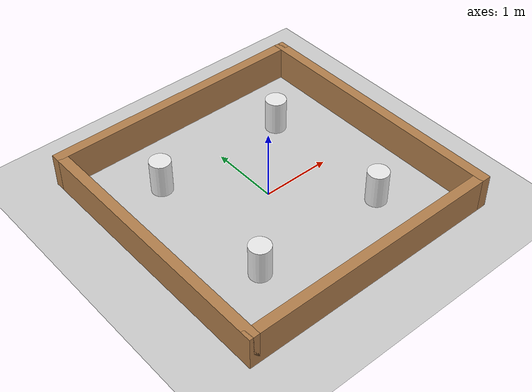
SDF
<sdf version='1.4'>
  <world name='default'>
    <!-- A global light source -->
    <include>
      <uri>model://sun</uri>
    </include>

    <!-- A ground plane -->
    <include>
      <uri>model://ground_plane</uri>
    </include>

    <physics type="ode">
      <real_time_update_rate>1000.0</real_time_update_rate>
      <max_step_size>0.003</max_step_size>
      <real_time_factor>3</real_time_factor>
      <ode>
        <solver>
          <type>quick</type>
          <iters>150</iters>
          <precon_iters>0</precon_iters>
          <sor>1.400000</sor>
          <use_dynamic_moi_rescaling>1</use_dynamic_moi_rescaling>
        </solver>
        <constraints>
          <cfm>0.00001</cfm>
          <erp>0.2</erp>
          <contact_max_correcting_vel>2000.000000</contact_max_correcting_vel>
          <contact_surface_layer>0.01000</contact_surface_layer>
        </constraints>
      </ode>
    </physics>

    <!-- Load model -->
    <include>
      <uri>model://turtlebot3_square</uri>
    </include>

    <model name="turtlebot3_dqn_obstacles">
      <plugin name="obstacles" filename="libobstacles.so"/>
      <allow_auto_disable>1</allow_auto_disable>
      <include>
        <uri>model://turtlebot3_dqn_world/obstacles</uri>
      </include>
    </model>

    <scene>
      <ambient>0.4 0.4 0.4 1</ambient>
      <background>0.7 0.7 0.7 1</background>
      <shadows>false</shadows>
    </scene>

    <gui fullscreen='0'>
      <camera name='user_camera'>
        <projection_type>orthographic</projection_type>
        <pose>0.8 0.0 12.0 0 1.5708 0</pose>
        <view_controller>orbit</view_controller>
      </camera>
    </gui>
  </world>
</sdf>

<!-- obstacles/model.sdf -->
<sdf version='1.8'>
  <model name='obstacles'>
    <pose>0 0 0 0 0 0</pose>
    <static>false</static>

    <link name='obstacle_1'>
      <pose>-1.0 -1.0 0.25 0 0 0</pose>
      <collision name='obstacle_1_collision'>
        <geometry>
          <cylinder>
            <radius>0.15</radius>
            <length>0.5</length>
          </cylinder>
        </geometry>
      </collision>
      <visual name='obstacle_1_visual'>
        <geometry>
          <cylinder>
            <radius>0.15</radius>
            <length>0.5</length>
          </cylinder>
        </geometry>
        <material>
          <script>
            <uri>file://media/materials/scripts/gazebo.material</uri>
            <name>Gazebo/White</name>
          </script>
        </material>
      </visual>
    </link>
    <link name='obstacle_2'>
      <pose>-1.0 1.0 0.25 0 0 0</pose>
      <collision name='obstacle_2_collision'>
        <geometry>
          <cylinder>
            <radius>0.15</radius>
            <length>0.5</length>
          </cylinder>
        </geometry>
      </collision>
      <visual name='obstacle_2_visual'>
        <geometry>
          <cylinder>
            <radius>0.15</radius>
            <length>0.5</length>
          </cylinder>
        </geometry>
        <material>
          <script>
            <uri>file://media/materials/scripts/gazebo.material</uri>
            <name>Gazebo/White</name>
          </script>
        </material>
      </visual>
    </link>
    <link name='obstacle_3'>
      <pose>1.0 -1.0 0.25 0 0 0</pose>
      <collision name='obstacle_3_collision'>
        <geometry>
          <cylinder>
            <radius>0.15</radius>
            <length>0.5</length>
          </cylinder>
        </geometry>
      </collision>
      <visual name='obstacle_3_visual'>
        <geometry>
          <cylinder>
            <radius>0.15</radius>
            <length>0.5</length>
          </cylinder>
        </geometry>
        <material>
          <script>
            <uri>file://media/materials/scripts/gazebo.material</uri>
            <name>Gazebo/White</name>
          </script>
        </material>
      </visual>
    </link>
    <link name='obstacle_4'>
      <pose>1.0 1.0 0.25 0 0 0</pose>
      <collision name='obstacle_4_collision'>
        <geometry>
          <cylinder>
            <radius>0.15</radius>
            <length>0.5</length>
          </cylinder>
        </geometry>
      </collision>
      <visual name='obstacle_4_visual'>
        <geometry>
          <cylinder>
            <radius>0.15</radius>
            <length>0.5</length>
          </cylinder>
        </geometry>
        <material>
          <script>
            <uri>file://media/materials/scripts/gazebo.material</uri>
            <name>Gazebo/White</name>
          </script>
        </material>
      </visual>
    </link>
  </model>
</sdf>

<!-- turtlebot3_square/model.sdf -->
<sdf version='1.6'>
  <model name='turtlebot3_square'>
    <pose frame=''>0 0 0 0 -0 0</pose>
    <link name='Wall_0'>
      <collision name='Wall_0_Collision'>
        <geometry>
          <box>
            <size>4 0.15 0.5</size>
          </box>
        </geometry>
        <pose frame=''>0 0 0.25 0 -0 0</pose>
      </collision>
      <visual name='Wall_0_Visual'>
        <pose frame=''>0 0 0.25 0 -0 0</pose>
        <geometry>
          <box>
            <size>4 0.15 0.5</size>
          </box>
        </geometry>
        <material>
          <script>
            <uri>file://media/materials/scripts/gazebo.material</uri>
            <name>Gazebo/Wood</name>
          </script>
          <ambient>1 1 1 1</ambient>
        </material>
      </visual>
      <pose frame=''>0 1.925 0 0 -0 0</pose>
    </link>
    <link name='Wall_2'>
      <collision name='Wall_2_Collision'>
        <geometry>
          <box>
            <size>4 0.15 0.5</size>
          </box>
        </geometry>
        <pose frame=''>0 0 0.25 0 -0 0</pose>
      </collision>
      <visual name='Wall_2_Visual'>
        <pose frame=''>0 0 0.25 0 -0 0</pose>
        <geometry>
          <box>
            <size>4 0.15 0.5</size>
          </box>
        </geometry>
        <material>
          <script>
            <uri>file://media/materials/scripts/gazebo.material</uri>
            <name>Gazebo/Wood</name>
          </script>
          <ambient>1 1 1 1</ambient>
        </material>
      </visual>
      <pose frame=''>-1.925 0 0 0 0 -1.5708</pose>
    </link>
    <link name='Wall_3'>
      <collision name='Wall_3_Collision'>
        <geometry>
          <box>
            <size>4 0.15 0.5</size>
          </box>
        </geometry>
        <pose frame=''>0 0 0.25 0 -0 0</pose>
      </collision>
      <visual name='Wall_3_Visual'>
        <pose frame=''>0 0 0.25 0 -0 0</pose>
        <geometry>
          <box>
            <size>4 0.15 0.5</size>
          </box>
        </geometry>
        <material>
          <script>
            <uri>file://media/materials/scripts/gazebo.material</uri>
            <name>Gazebo/Wood</name>
          </script>
          <ambient>1 1 1 1</ambient>
        </material>
      </visual>
      <pose frame=''>0 -1.925 0 0 -0 0</pose>
    </link>
    <link name='Wall_4'>
      <collision name='Wall_4_Collision'>
        <geometry>
          <box>
            <size>4 0.15 0.5</size>
          </box>
        </geometry>
        <pose frame=''>0 0 0.25 0 -0 0</pose>
      </collision>
      <visual name='Wall_4_Visual'>
        <pose frame=''>0 0 0.25 0 -0 0</pose>
        <geometry>
          <box>
            <size>4 0.15 0.5</size>
          </box>
        </geometry>
        <material>
          <script>
            <uri>file://media/materials/scripts/gazebo.material</uri>
            <name>Gazebo/Wood</name>
          </script>
          <ambient>1 1 1 1</ambient>
        </material>
      </visual>
      <pose frame=''>1.925 0 0 0 -0 1.5708</pose>
    </link>
    <static>1</static>
  </model>
</sdf>
